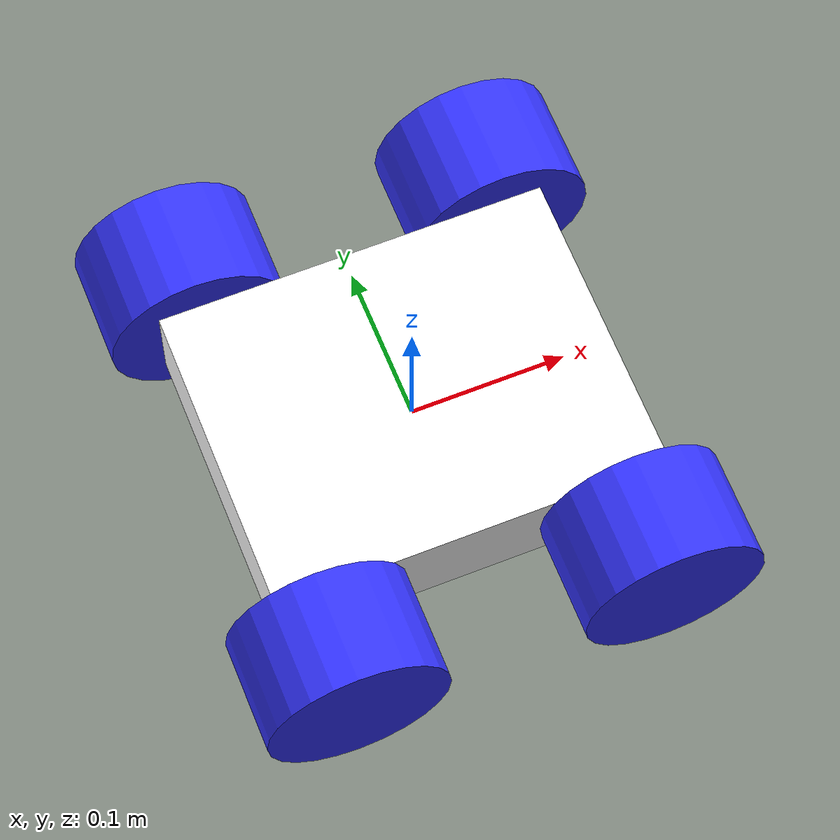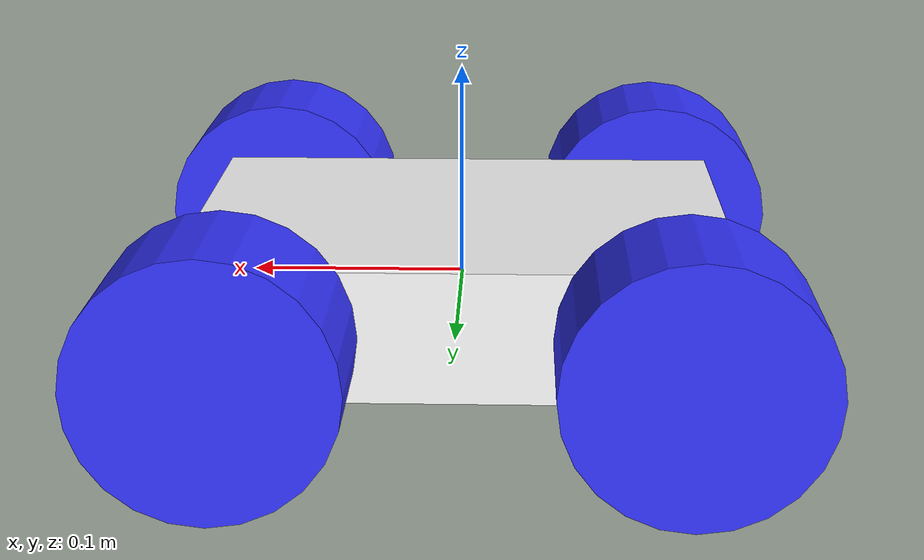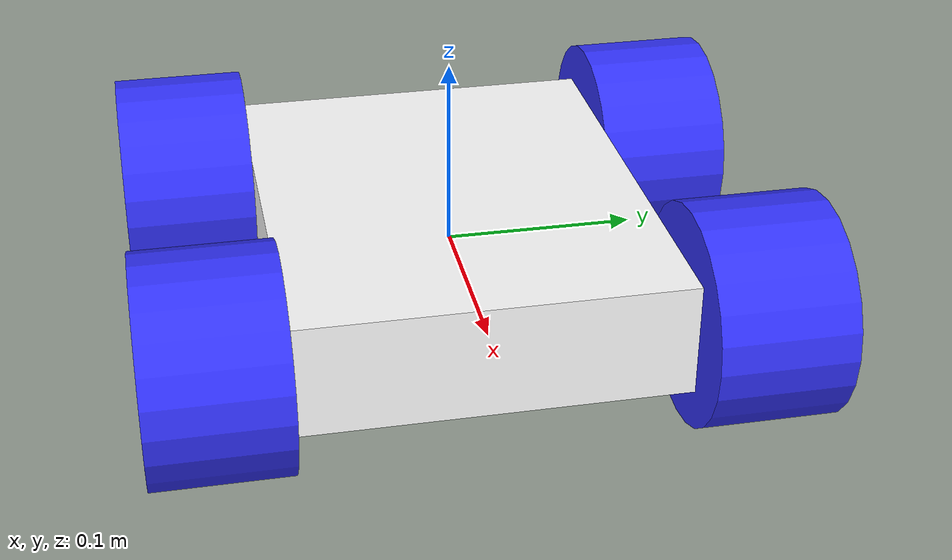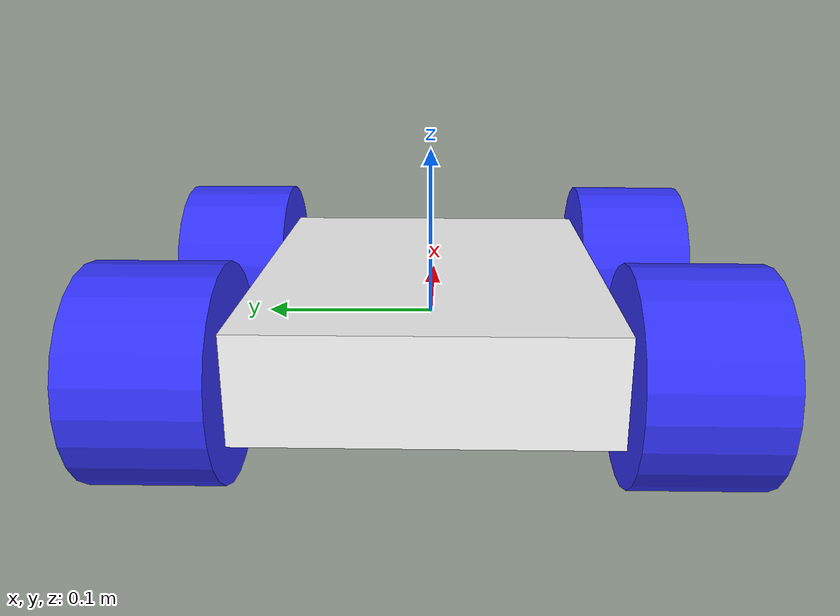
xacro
<?xml version="1.0"?>
<robot xmlns:xacro="http://www.ros.org/wiki/xacro"  >
    <xacro:include filename="inertial_macros.xacro"/>

    <material name="white">
        <color rgba="1 1 1 1" />
    </material>

    <material name="orange">
        <color rgba="1 0.3 0.1 1"/>
    </material>

    <material name="blue">
        <color rgba="0.2 0.2 1 1"/>
    </material>

    <material name="black">
        <color rgba="0 0 0 1"/>
    </material>

    <material name="red">
        <color rgba="1 0 0 1"/>
    </material>

     <!-- BASE LINK -->

    <link name="base_link">

    </link>

     <!-- CHASSIS LINK -->

     <joint name="chassis_joint" type="fixed">
        <parent link="base_link"/> <!-- centre -->
        <child link="chassis"/>
        <origin xyz="-0.125 0 0"/>
    </joint>

    <link name="chassis">
        <visual>
            <origin xyz="0.125 0 0"/>
            <geometry>
                <box size="0.25 0.2 0.06"/>
            </geometry>
            <material name="white"/>
        </visual>
        <collision>
            <origin xyz="0.125 0 0"/>
            <geometry>
                <box size="0.25 0.2 0.06"/>
            </geometry>
        </collision>
        <xacro:inertial_box mass="0.5" x="0.25" y="0.2" z="0.06">
            <origin xyz="0.125 0 0" rpy="0 0 0"/>
        </xacro:inertial_box>
    </link>

     <!-- ROUE Gauche Haut GH -->

     <joint name="gh_wheel_joint" type="fixed">
        <parent link="base_link"/>
        <child link="gh_wheel"/>
        <origin xyz="0.1 0.135 0" rpy="-${pi/2} 0 0" />
        <axis xyz="0 0 1"/>
    </joint>

    <link name="gh_wheel">
        <visual>
            <geometry>
                <cylinder radius="0.0575" length="0.07"/>
            </geometry>
            <material name="blue"/>
        </visual>
        <xacro:inertial_cylinder mass="0.1" length="0.07" radius="0.0575">
            <origin xyz="0 0 0" rpy="0 0 0"/>
        </xacro:inertial_cylinder>
    </link>

     <!-- ROUE GB -->

     <joint name="gb_wheel_joint" type="fixed">
        <parent link="base_link"/>
        <child link="gb_wheel"/>
        <origin xyz="-0.1 0.135 0" rpy="-${pi/2} 0 0" />
        <axis xyz="0 0 1"/>
    </joint>

    <link name="gb_wheel">
        <visual>
            <geometry>
                <cylinder radius="0.0575" length="0.07"/>
            </geometry>
            <material name="blue"/>
        </visual>
        <xacro:inertial_cylinder mass="0.1" length="0.07" radius="0.0575">
            <origin xyz="0 0 0" rpy="0 0 0"/>
        </xacro:inertial_cylinder>
    </link>

    <!-- ROUE DH -->

    <joint name="dh_wheel_joint" type="fixed">
        <parent link="base_link"/>
        <child link="dh_wheel"/>
        <origin xyz="0.1 -0.135 0" rpy="-${pi/2} 0 0" />
        <axis xyz="0 0 1"/>
    </joint>

    <link name="dh_wheel">
        <visual>
            <geometry>
                <cylinder radius="0.0575" length="0.07"/>
            </geometry>
            <material name="blue"/>
        </visual>
        <xacro:inertial_cylinder mass="0.1" length="0.07" radius="0.0575">
            <origin xyz="0 0 0" rpy="0 0 0"/>
        </xacro:inertial_cylinder>
    </link>

    <!-- ROUE DB -->

    <joint name="db_wheel_joint" type="fixed">
        <parent link="base_link"/>
        <child link="db_wheel"/>
        <origin xyz="-0.1 -0.135 0" rpy="-${pi/2} 0 0" />
        <axis xyz="0 0 1"/>
    </joint>

    <link name="db_wheel">
        <visual>
            <geometry>
                <cylinder radius="0.0575" length="0.07"/>
            </geometry>
            <material name="blue"/>
        </visual>
        <xacro:inertial_cylinder mass="0.1" length="0.07" radius="0.0575">
            <origin xyz="0 0 0" rpy="0 0 0"/>
        </xacro:inertial_cylinder>
    </link>

</robot>
